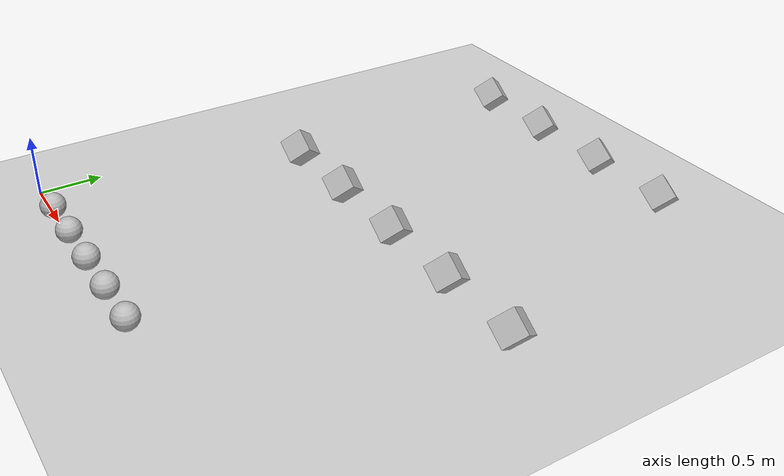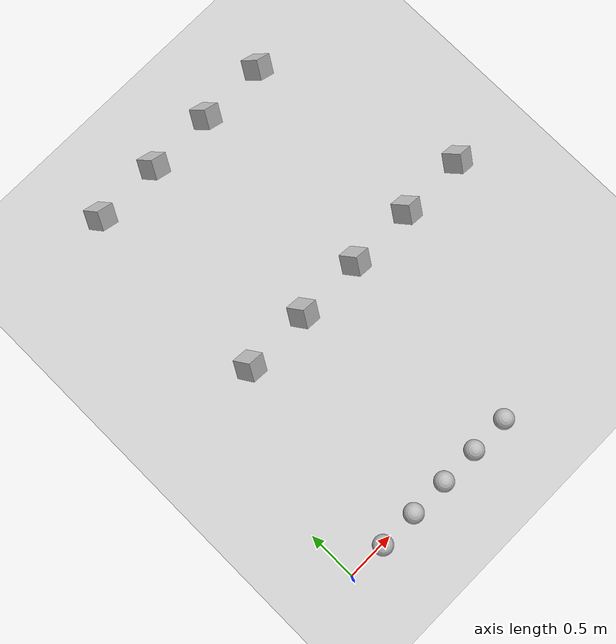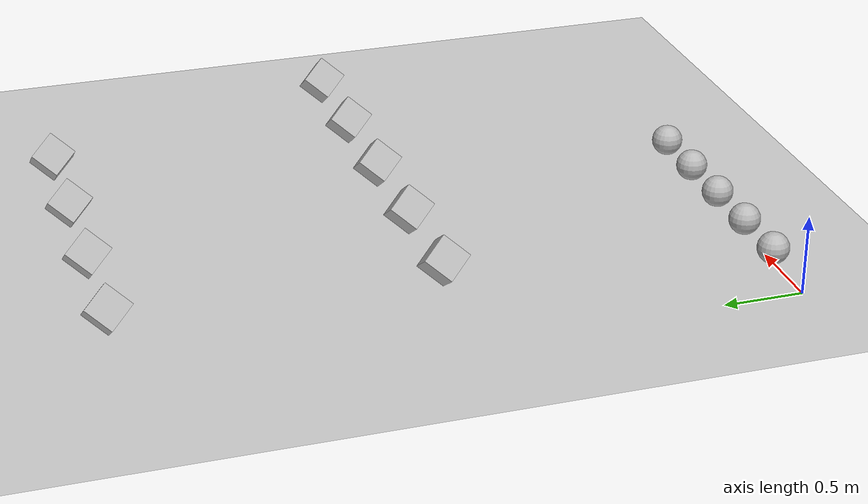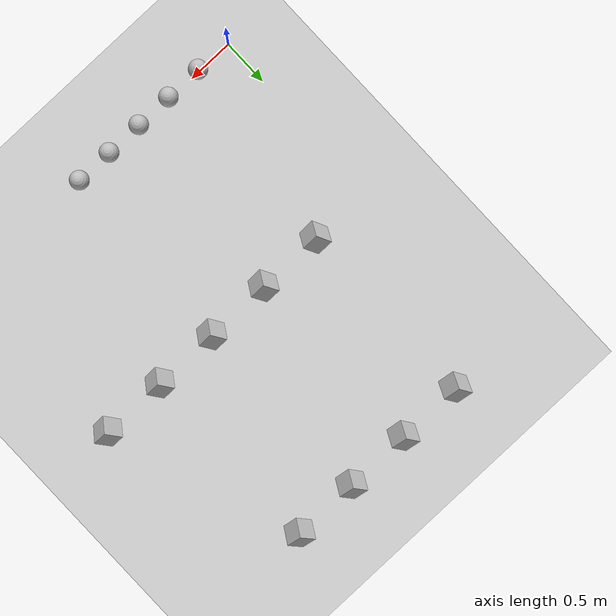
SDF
<sdf version="1.5">
 <world name="default">
  <include><uri>model://ground_plane</uri></include>
  <include><uri>model://sun</uri></include>
  <model name="sphere_1">
   <allow_auto_disable>0</allow_auto_disable>
   <pose>0.4 0 0.1  0 0 0</pose>
   <link name="link">
    <inertial>
     <mass>11.309733552923259</mass>
     <inertia>
      <ixx>0.045238934211693047</ixx>
      <iyy>0.045238934211693047</iyy>
      <izz>0.045238934211693047</izz>
      <ixy>0.0</ixy>
      <ixz>0.0</ixz>
      <iyz>0.0</iyz>
     </inertia>
    </inertial>
    <collision name="collision">
     <geometry><sphere><radius>0.1</radius></sphere></geometry>
     <surface>
      <friction>
       <ode><mu>0.0</mu><mu2>0.0</mu2></ode>
       <torsional><coefficient>0.0</coefficient><patch_radius>2.0</patch_radius></torsional>
      </friction>
      <contact><ode><kp>500000</kp></ode></contact>
     </surface>
    </collision>
    <visual name="visual">
     <geometry><sphere><radius>0.1</radius></sphere></geometry>
     <material>
      <script><uri>file://media/materials/scripts/gazebo.material</uri><name>Gazebo/CoM</name></script>
     </material>
    </visual>
   </link>
   <plugin name="sphere_1" filename="libInitialVelocityPlugin.so">
    <linear>0 0 0</linear>
    <angular>0 0 6.283185307179586</angular>
   </plugin>
  </model>
  <model name="sphere_2">
   <allow_auto_disable>0</allow_auto_disable>
   <pose>0.8 0 0.1  0 0 0</pose>
   <link name="link">
    <inertial>
     <mass>11.309733552923259</mass>
     <inertia>
      <ixx>0.045238934211693047</ixx>
      <iyy>0.045238934211693047</iyy>
      <izz>0.045238934211693047</izz>
      <ixy>0.0</ixy>
      <ixz>0.0</ixz>
      <iyz>0.0</iyz>
     </inertia>
    </inertial>
    <collision name="collision">
     <geometry><sphere><radius>0.1</radius></sphere></geometry>
     <surface>
      <friction>
       <ode><mu>0.001</mu><mu2>0.001</mu2></ode>
       <torsional><coefficient>0.001</coefficient><patch_radius>2.0</patch_radius></torsional>
      </friction>
      <contact><ode><kp>500000</kp></ode></contact>
     </surface>
    </collision>
    <visual name="visual">
     <geometry><sphere><radius>0.1</radius></sphere></geometry>
     <material>
      <script><uri>file://media/materials/scripts/gazebo.material</uri><name>Gazebo/CoM</name></script>
     </material>
    </visual>
   </link>
   <plugin name="sphere_2" filename="libInitialVelocityPlugin.so">
    <linear>0 0 0</linear>
    <angular>0 0 6.283185307179586</angular>
   </plugin>
  </model>
  <model name="sphere_3">
   <allow_auto_disable>0</allow_auto_disable>
   <pose>1.2000000000000002 0 0.1  0 0 0</pose>
   <link name="link">
    <inertial>
     <mass>11.309733552923259</mass>
     <inertia>
      <ixx>0.045238934211693047</ixx>
      <iyy>0.045238934211693047</iyy>
      <izz>0.045238934211693047</izz>
      <ixy>0.0</ixy>
      <ixz>0.0</ixz>
      <iyz>0.0</iyz>
     </inertia>
    </inertial>
    <collision name="collision">
     <geometry><sphere><radius>0.1</radius></sphere></geometry>
     <surface>
      <friction>
       <ode><mu>0.005</mu><mu2>0.005</mu2></ode>
       <torsional><coefficient>0.005</coefficient><patch_radius>2.0</patch_radius></torsional>
      </friction>
      <contact><ode><kp>500000</kp></ode></contact>
     </surface>
    </collision>
    <visual name="visual">
     <geometry><sphere><radius>0.1</radius></sphere></geometry>
     <material>
      <script><uri>file://media/materials/scripts/gazebo.material</uri><name>Gazebo/CoM</name></script>
     </material>
    </visual>
   </link>
   <plugin name="sphere_3" filename="libInitialVelocityPlugin.so">
    <linear>0 0 0</linear>
    <angular>0 0 6.283185307179586</angular>
   </plugin>
  </model>
  <model name="sphere_4">
   <allow_auto_disable>0</allow_auto_disable>
   <pose>1.6 0 0.1  0 0 0</pose>
   <link name="link">
    <inertial>
     <mass>11.309733552923259</mass>
     <inertia>
      <ixx>0.045238934211693047</ixx>
      <iyy>0.045238934211693047</iyy>
      <izz>0.045238934211693047</izz>
      <ixy>0.0</ixy>
      <ixz>0.0</ixz>
      <iyz>0.0</iyz>
     </inertia>
    </inertial>
    <collision name="collision">
     <geometry><sphere><radius>0.1</radius></sphere></geometry>
     <surface>
      <friction>
       <ode><mu>0.01</mu><mu2>0.01</mu2></ode>
       <torsional><coefficient>0.01</coefficient><patch_radius>2.0</patch_radius></torsional>
      </friction>
      <contact><ode><kp>500000</kp></ode></contact>
     </surface>
    </collision>
    <visual name="visual">
     <geometry><sphere><radius>0.1</radius></sphere></geometry>
     <material>
      <script><uri>file://media/materials/scripts/gazebo.material</uri><name>Gazebo/CoM</name></script>
     </material>
    </visual>
   </link>
   <plugin name="sphere_4" filename="libInitialVelocityPlugin.so">
    <linear>0 0 0</linear>
    <angular>0 0 6.283185307179586</angular>
   </plugin>
  </model>
  <model name="sphere_5">
   <allow_auto_disable>0</allow_auto_disable>
   <pose>2.0 0 0.1  0 0 0</pose>
   <link name="link">
    <inertial>
     <mass>11.309733552923259</mass>
     <inertia>
      <ixx>0.045238934211693047</ixx>
      <iyy>0.045238934211693047</iyy>
      <izz>0.045238934211693047</izz>
      <ixy>0.0</ixy>
      <ixz>0.0</ixz>
      <iyz>0.0</iyz>
     </inertia>
    </inertial>
    <collision name="collision">
     <geometry><sphere><radius>0.1</radius></sphere></geometry>
     <surface>
      <friction>
       <ode><mu>1.0</mu><mu2>1.0</mu2></ode>
       <torsional><coefficient>1.0</coefficient><patch_radius>2.0</patch_radius></torsional>
      </friction>
      <contact><ode><kp>500000</kp></ode></contact>
     </surface>
    </collision>
    <visual name="visual">
     <geometry><sphere><radius>0.1</radius></sphere></geometry>
     <material>
      <script><uri>file://media/materials/scripts/gazebo.material</uri><name>Gazebo/CoM</name></script>
     </material>
    </visual>
   </link>
   <plugin name="sphere_5" filename="libInitialVelocityPlugin.so">
    <linear>0 0 0</linear>
    <angular>0 0 6.283185307179586</angular>
   </plugin>
  </model>
  <model name="box_1">
   <allow_auto_disable>0</allow_auto_disable>
   <pose>0.692820323027551 2 0.17320508075688776  0.7853981633974483 0.6154797086703873 0</pose>
   <link name="link">
    <inertial>
     <mass>21.6</mass>
     <inertia>
      <ixx>0.14400000000000004</ixx>
      <iyy>0.14400000000000004</iyy>
      <izz>0.14400000000000004</izz>
      <ixy>0.0</ixy>
      <ixz>0.0</ixz>
      <iyz>0.0</iyz>
     </inertia>
    </inertial>
    <collision name="collision">
     <geometry><box><size>0.2 0.2 0.2</size></box></geometry>
     <surface>
      <friction>
       <ode><mu>0.0</mu><mu2>0.0</mu2></ode>
       <torsional><coefficient>0.0</coefficient><patch_radius>2.0</patch_radius></torsional>
      </friction>
     </surface>
    </collision>
    <visual name="visual"><geometry><box><size>0.2 0.2 0.2</size></box></geometry></visual>
   </link>
   <plugin name="box_1" filename="libInitialVelocityPlugin.so">
    <linear>0 0 0</linear>
    <angular>0 0 6.283185307179586</angular>
   </plugin>
  </model>
  <model name="box_2">
   <allow_auto_disable>0</allow_auto_disable>
   <pose>1.385640646055102 2 0.17320508075688776  0.7853981633974483 0.6154797086703873 0</pose>
   <link name="link">
    <inertial>
     <mass>21.6</mass>
     <inertia>
      <ixx>0.14400000000000004</ixx>
      <iyy>0.14400000000000004</iyy>
      <izz>0.14400000000000004</izz>
      <ixy>0.0</ixy>
      <ixz>0.0</ixz>
      <iyz>0.0</iyz>
     </inertia>
    </inertial>
    <collision name="collision">
     <geometry><box><size>0.2 0.2 0.2</size></box></geometry>
     <surface>
      <friction>
       <ode><mu>0.001</mu><mu2>0.001</mu2></ode>
       <torsional><coefficient>0.001</coefficient><patch_radius>2.0</patch_radius></torsional>
      </friction>
     </surface>
    </collision>
    <visual name="visual"><geometry><box><size>0.2 0.2 0.2</size></box></geometry></visual>
   </link>
   <plugin name="box_2" filename="libInitialVelocityPlugin.so">
    <linear>0 0 0</linear>
    <angular>0 0 6.283185307179586</angular>
   </plugin>
  </model>
  <model name="box_3">
   <allow_auto_disable>0</allow_auto_disable>
   <pose>2.078460969082653 2 0.17320508075688776  0.7853981633974483 0.6154797086703873 0</pose>
   <link name="link">
    <inertial>
     <mass>21.6</mass>
     <inertia>
      <ixx>0.14400000000000004</ixx>
      <iyy>0.14400000000000004</iyy>
      <izz>0.14400000000000004</izz>
      <ixy>0.0</ixy>
      <ixz>0.0</ixz>
      <iyz>0.0</iyz>
     </inertia>
    </inertial>
    <collision name="collision">
     <geometry><box><size>0.2 0.2 0.2</size></box></geometry>
     <surface>
      <friction>
       <ode><mu>0.005</mu><mu2>0.005</mu2></ode>
       <torsional><coefficient>0.005</coefficient><patch_radius>2.0</patch_radius></torsional>
      </friction>
     </surface>
    </collision>
    <visual name="visual"><geometry><box><size>0.2 0.2 0.2</size></box></geometry></visual>
   </link>
   <plugin name="box_3" filename="libInitialVelocityPlugin.so">
    <linear>0 0 0</linear>
    <angular>0 0 6.283185307179586</angular>
   </plugin>
  </model>
  <model name="box_4">
   <allow_auto_disable>0</allow_auto_disable>
   <pose>2.771281292110204 2 0.17320508075688776  0.7853981633974483 0.6154797086703873 0</pose>
   <link name="link">
    <inertial>
     <mass>21.6</mass>
     <inertia>
      <ixx>0.14400000000000004</ixx>
      <iyy>0.14400000000000004</iyy>
      <izz>0.14400000000000004</izz>
      <ixy>0.0</ixy>
      <ixz>0.0</ixz>
      <iyz>0.0</iyz>
     </inertia>
    </inertial>
    <collision name="collision">
     <geometry><box><size>0.2 0.2 0.2</size></box></geometry>
     <surface>
      <friction>
       <ode><mu>0.01</mu><mu2>0.01</mu2></ode>
       <torsional><coefficient>0.01</coefficient><patch_radius>2.0</patch_radius></torsional>
      </friction>
     </surface>
    </collision>
    <visual name="visual"><geometry><box><size>0.2 0.2 0.2</size></box></geometry></visual>
   </link>
   <plugin name="box_4" filename="libInitialVelocityPlugin.so">
    <linear>0 0 0</linear>
    <angular>0 0 6.283185307179586</angular>
   </plugin>
  </model>
  <model name="box_5">
   <allow_auto_disable>0</allow_auto_disable>
   <pose>3.4641016151377553 2 0.17320508075688776  0.7853981633974483 0.6154797086703873 0</pose>
   <link name="link">
    <inertial>
     <mass>21.6</mass>
     <inertia>
      <ixx>0.14400000000000004</ixx>
      <iyy>0.14400000000000004</iyy>
      <izz>0.14400000000000004</izz>
      <ixy>0.0</ixy>
      <ixz>0.0</ixz>
      <iyz>0.0</iyz>
     </inertia>
    </inertial>
    <collision name="collision">
     <geometry><box><size>0.2 0.2 0.2</size></box></geometry>
     <surface>
      <friction>
       <ode><mu>1.0</mu><mu2>1.0</mu2></ode>
       <torsional><coefficient>1.0</coefficient><patch_radius>2.0</patch_radius></torsional>
      </friction>
     </surface>
    </collision>
    <visual name="visual"><geometry><box><size>0.2 0.2 0.2</size></box></geometry></visual>
   </link>
   <plugin name="box_5" filename="libInitialVelocityPlugin.so">
    <linear>0 0 0</linear>
    <angular>0 0 6.283185307179586</angular>
   </plugin>
  </model>
  <model name="box_low_cog_1">
   <allow_auto_disable>0</allow_auto_disable>
   <pose>0.692820323027551 4 0.17320508075688776  0.7853981633974483 0.6154797086703873 0</pose>
   <link name="link">
    <inertial>
     <pose>1 -1 -1  0 0 0</pose>
     <mass>21.6</mass>
     <inertia>
      <ixx>0.14400000000000004</ixx>
      <iyy>0.14400000000000004</iyy>
      <izz>0.14400000000000004</izz>
      <ixy>0.0</ixy>
      <ixz>0.0</ixz>
      <iyz>0.0</iyz>
     </inertia>
    </inertial>
    <collision name="collision">
     <geometry><box><size>0.2 0.2 0.2</size></box></geometry>
     <surface>
      <friction>
       <ode><mu>0.0</mu><mu2>0.0</mu2></ode>
       <torsional><coefficient>0.0</coefficient><patch_radius>2.0</patch_radius></torsional>
      </friction>
     </surface>
    </collision>
    <visual name="visual"><geometry><box><size>0.2 0.2 0.2</size></box></geometry></visual>
   </link>
   <plugin name="box_low_cog_1" filename="libInitialVelocityPlugin.so">
    <linear>0 0 0</linear>
    <angular>0 0 6.283185307179586</angular>
   </plugin>
  </model>
  <model name="box_low_cog_2">
   <allow_auto_disable>0</allow_auto_disable>
   <pose>1.385640646055102 4 0.17320508075688776  0.7853981633974483 0.6154797086703873 0</pose>
   <link name="link">
    <inertial>
     <pose>1 -1 -1  0 0 0</pose>
     <mass>21.6</mass>
     <inertia>
      <ixx>0.14400000000000004</ixx>
      <iyy>0.14400000000000004</iyy>
      <izz>0.14400000000000004</izz>
      <ixy>0.0</ixy>
      <ixz>0.0</ixz>
      <iyz>0.0</iyz>
     </inertia>
    </inertial>
    <collision name="collision">
     <geometry><box><size>0.2 0.2 0.2</size></box></geometry>
     <surface>
      <friction>
       <ode><mu>0.001</mu><mu2>0.001</mu2></ode>
       <torsional><coefficient>0.001</coefficient><patch_radius>2.0</patch_radius></torsional>
      </friction>
     </surface>
    </collision>
    <visual name="visual"><geometry><box><size>0.2 0.2 0.2</size></box></geometry></visual>
   </link>
   <plugin name="box_low_cog_2" filename="libInitialVelocityPlugin.so">
    <linear>0 0 0</linear>
    <angular>0 0 6.283185307179586</angular>
   </plugin>
  </model>
  <model name="box_low_cog_3">
   <allow_auto_disable>0</allow_auto_disable>
   <pose>2.078460969082653 4 0.17320508075688776  0.7853981633974483 0.6154797086703873 0</pose>
   <link name="link">
    <inertial>
     <pose>1 -1 -1  0 0 0</pose>
     <mass>21.6</mass>
     <inertia>
      <ixx>0.14400000000000004</ixx>
      <iyy>0.14400000000000004</iyy>
      <izz>0.14400000000000004</izz>
      <ixy>0.0</ixy>
      <ixz>0.0</ixz>
      <iyz>0.0</iyz>
     </inertia>
    </inertial>
    <collision name="collision">
     <geometry><box><size>0.2 0.2 0.2</size></box></geometry>
     <surface>
      <friction>
       <ode><mu>0.005</mu><mu2>0.005</mu2></ode>
       <torsional><coefficient>0.005</coefficient><patch_radius>2.0</patch_radius></torsional>
      </friction>
     </surface>
    </collision>
    <visual name="visual"><geometry><box><size>0.2 0.2 0.2</size></box></geometry></visual>
   </link>
   <plugin name="box_low_cog_3" filename="libInitialVelocityPlugin.so">
    <linear>0 0 0</linear>
    <angular>0 0 6.283185307179586</angular>
   </plugin>
  </model>
  <model name="box_low_cog_4">
   <allow_auto_disable>0</allow_auto_disable>
   <pose>2.771281292110204 4 0.17320508075688776  0.7853981633974483 0.6154797086703873 0</pose>
   <link name="link">
    <inertial>
     <pose>1 -1 -1  0 0 0</pose>
     <mass>21.6</mass>
     <inertia>
      <ixx>0.14400000000000004</ixx>
      <iyy>0.14400000000000004</iyy>
      <izz>0.14400000000000004</izz>
      <ixy>0.0</ixy>
      <ixz>0.0</ixz>
      <iyz>0.0</iyz>
     </inertia>
    </inertial>
    <collision name="collision">
     <geometry><box><size>0.2 0.2 0.2</size></box></geometry>
     <surface>
      <friction>
       <ode><mu>0.01</mu><mu2>0.01</mu2></ode>
       <torsional><coefficient>0.01</coefficient><patch_radius>2.0</patch_radius></torsional>
      </friction>
     </surface>
    </collision>
    <visual name="visual"><geometry><box><size>0.2 0.2 0.2</size></box></geometry></visual>
   </link>
   <plugin name="box_low_cog_4" filename="libInitialVelocityPlugin.so">
    <linear>0 0 0</linear>
    <angular>0 0 6.283185307179586</angular>
   </plugin>
  </model>
 </world>
</sdf>
